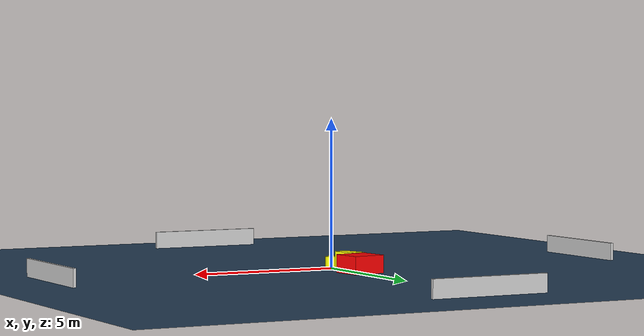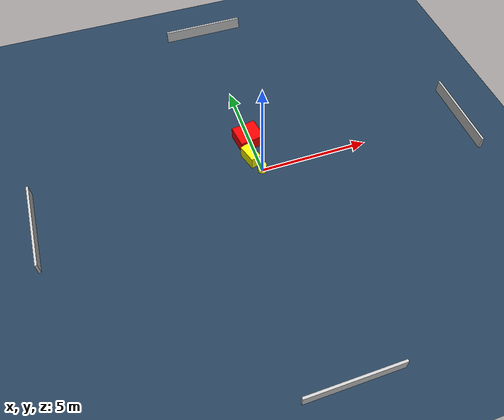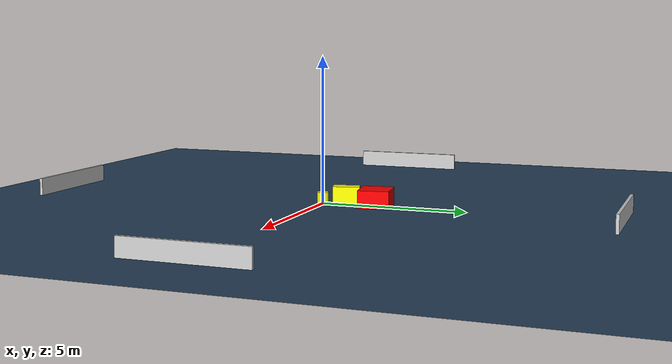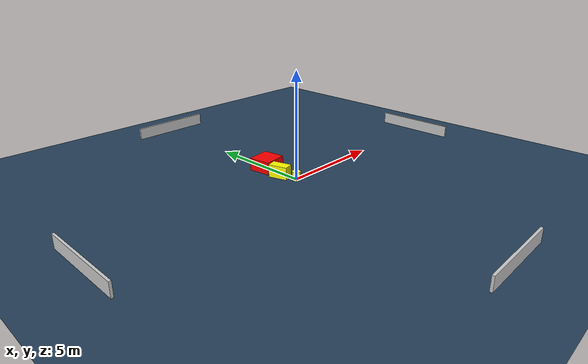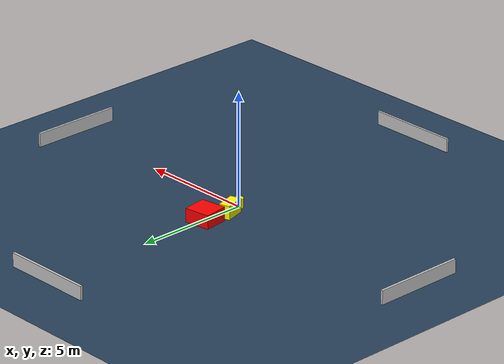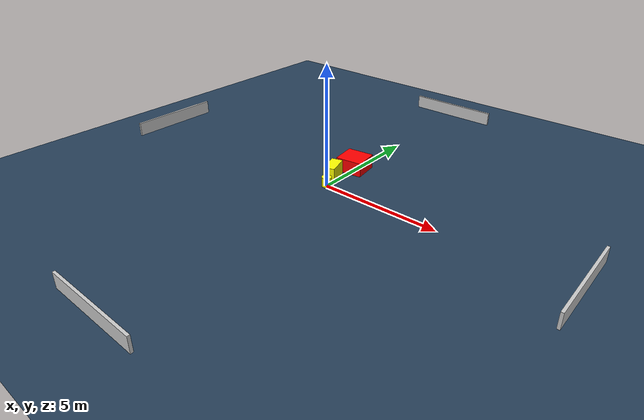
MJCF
<?xml version="1.0" ?>
<mujoco model="generated_environment">
  <option timestep="0.01" integrator="RK4" cone="elliptic"/>
  <default>
    <geom density="1"/>
  </default>
  <asset>
    <texture builtin="gradient" height="3072" name="skybox" rgb1="0.3 0.5 0.7" rgb2="0 0 0" type="skybox" width="512"/>
    <texture builtin="checker" height="300" name="groundplane" rgb1="0.2 0.3 0.4" rgb2="0.1 0.2 0.3" type="2d" width="300"/>
    <material name="groundplane" reflectance="0.2" texrepeat="5 5" texture="groundplane"/>
  </asset>
  <worldbody>
    <light dir="0 0 -1" directional="true" pos="0 0 1.5"/>
    <geom condim="3" friction="0.5 0.005 0.001" material="groundplane" name="floor" pos="0 0 0" size="0 0 0.05" type="plane"/>
    <body name="walls">
      <geom name="wall_1" condim="4" pos="-10.0 0.0 0.3" rgba="0.800000011920929 0.800000011920929 0.800000011920929 1.0" size="0.05 2.0 0.3" type="box"/>
      <geom name="wall_2" condim="4" pos="10.0 0.0 0.3" rgba="0.800000011920929 0.800000011920929 0.800000011920929 1.0" size="0.05 2.0 0.3" type="box"/>
      <geom name="wall_3" condim="4" pos="0.0 -10.0 0.3" rgba="0.800000011920929 0.800000011920929 0.800000011920929 1.0" size="2.0 0.05 0.3" type="box"/>
      <geom name="wall_4" condim="4" pos="0.0 10.0 0.3" rgba="0.800000011920929 0.800000011920929 0.800000011920929 1.0" size="2.0 0.05 0.3" type="box"/>
    </body>
    <body name="robot">
      <joint name="joint_x" type="slide" pos="0 0 0" axis="1 0 0"/>
      <joint name="joint_y" type="slide" pos="0 0 0" axis="0 1 0"/>
      <geom name="robot" type="cylinder" pos="0.0 0.0 0.2" size="0.2 0.2 0.0" mass="5.0" friction="1.0 0.005 0.0001" condim="4" rgba="1.0 1.0 0.0 1.0"/>
    </body>
    <body name="obstacle_1_movable">
      <geom name="obstacle_1_movable" condim="4" pos="-0.2988163344963722 0.748458039543126 0.3" euler="0 0 286.5842374181408" friction="0.0 0.005 0.001" rgba="1.0 1.0 0.0 1.0" size="0.45458685361470563 0.23846897987318277 0.3" type="box" mass="0.1"/>
      <joint type="free"/>
    </body>
    <body name="obstacle_2_static">
      <geom name="obstacle_2_static" condim="4" pos="-0.06651430787360489 1.8777145368752965 0.3" euler="0 0 98.00019210745931" friction="0.0 0.005 0.001" rgba="1.0 0.0 0.0 1.0" size="0.5309457728535937 0.5693793681925179 0.3" type="box"/>
    </body>
  </worldbody>
  <actuator>
    <motor name="actuator_x" joint="joint_x" gear="1" ctrlrange="-1 1"/>
    <motor name="actuator_y" joint="joint_y" gear="1" ctrlrange="-1 1"/>
  </actuator>
</mujoco>
